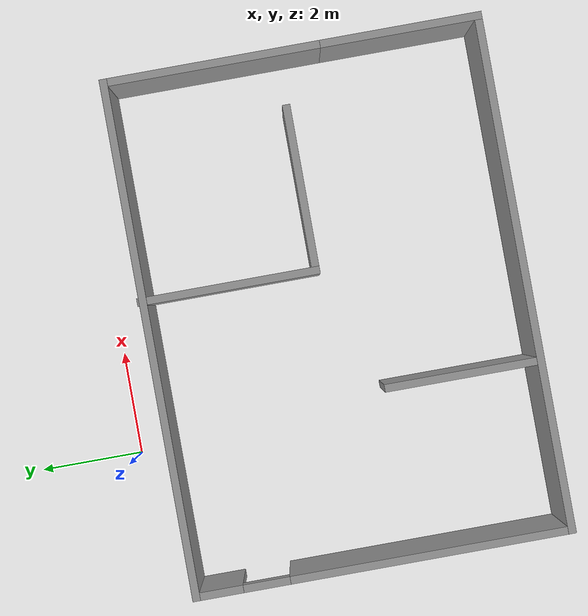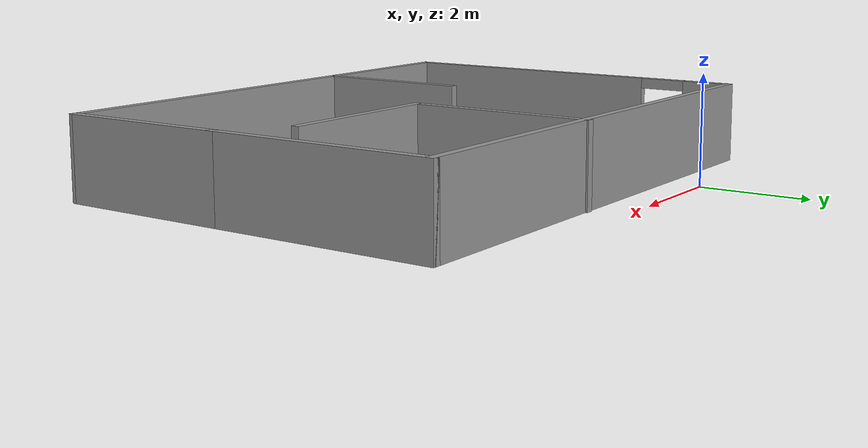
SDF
<?xml version='1.0'?>
<sdf version='1.7'>
  <model name='hbot_house'>
    <pose>2.185 -3.9926 0 0 -0 0</pose>
    <link name='Wall_0'>
      <collision name='Wall_0_Collision'>
        <geometry>
          <box>
            <size>10 0.15 1.5</size>
          </box>
        </geometry>
        <pose>0 0 0.75 0 -0 0</pose>
      </collision>
      <visual name='Wall_0_Visual'>
        <pose>0 0 0.75 0 -0 0</pose>
        <geometry>
          <box>
            <size>10 0.15 1.5</size>
          </box>
        </geometry>
        <material>
          <script>
            <uri>file://media/materials/scripts/gazebo.material</uri>
            <name>Gazebo/Grey</name>
          </script>
          <ambient>1 1 1 1</ambient>
        </material>
        <meta>
          <layer>0</layer>
        </meta>
      </visual>
      <pose>0 3.2826 0 0 -0 0</pose>
    </link>
    <link name='Wall_1'>
      <collision name='Wall_1_Collision'>
        <geometry>
          <box>
            <size>4.223 0.15 1.5</size>
          </box>
        </geometry>
        <pose>0 0 0.75 0 -0 0</pose>
      </collision>
      <visual name='Wall_1_Visual'>
        <pose>0 0 0.75 0 -0 0</pose>
        <geometry>
          <box>
            <size>4.223 0.15 1.5</size>
          </box>
        </geometry>
        <material>
          <script>
            <uri>file://media/materials/scripts/gazebo.material</uri>
            <name>Gazebo/Grey</name>
          </script>
          <ambient>1 1 1 1</ambient>
        </material>
        <meta>
          <layer>0</layer>
        </meta>
      </visual>
      <pose>4.925 1.2461 0 0 -0 -1.5708</pose>
    </link>
    <link name='Wall_2'>
      <collision name='Wall_2_Collision'>
        <geometry>
          <box>
            <size>3.25 0.15 1.5</size>
          </box>
        </geometry>
        <pose>0 0 0.75 0 -0 0</pose>
      </collision>
      <visual name='Wall_2_Visual'>
        <pose>0 0 0.75 0 -0 0</pose>
        <geometry>
          <box>
            <size>3.25 0.15 1.5</size>
          </box>
        </geometry>
        <material>
          <script>
            <uri>file://media/materials/scripts/gazebo.material</uri>
            <name>Gazebo/Grey</name>
          </script>
          <ambient>1 1 1 1</ambient>
        </material>
        <meta>
          <layer>0</layer>
        </meta>
      </visual>
      <pose>4.925 -2.3404 0 0 -0 -1.5708</pose>
    </link>
    <link name='Wall_3'>
      <collision name='Wall_3_Collision'>
        <geometry>
          <box>
            <size>10 0.15 1.5</size>
          </box>
        </geometry>
        <pose>0 0 0.75 0 -0 0</pose>
      </collision>
      <visual name='Wall_3_Visual'>
        <pose>0 0 0.75 0 -0 0</pose>
        <geometry>
          <box>
            <size>10 0.15 1.5</size>
          </box>
        </geometry>
        <material>
          <script>
            <uri>file://media/materials/scripts/gazebo.material</uri>
            <name>Gazebo/Grey</name>
          </script>
          <ambient>1 1 1 1</ambient>
        </material>
        <meta>
          <layer>0</layer>
        </meta>
      </visual>
      <pose>0 -3.9039 0 0 -0 -3.13885</pose>
    </link>
    <link name='Wall_4'>
      <pose>-4.925 -0.367398 0 0 -0 1.5708</pose>
      <visual name='Wall_4_Visual_0'>
        <pose>-0.891839 0 0.75 0 -0 0</pose>
        <geometry>
          <box>
            <size>5.46632 0.15 1.5</size>
          </box>
        </geometry>
        <material>
          <script>
            <uri>file://media/materials/scripts/gazebo.material</uri>
            <name>Gazebo/Grey</name>
          </script>
          <ambient>1 1 1 1</ambient>
        </material>
        <meta>
          <layer>0</layer>
        </meta>
      </visual>
      <collision name='Wall_4_Collision_0'>
        <geometry>
          <box>
            <size>5.46632 0.15 1.5</size>
          </box>
        </geometry>
        <pose>-0.891839 0 0.75 0 -0 0</pose>
      </collision>
      <visual name='Wall_4_Visual_1'>
        <pose>3.18316 0 0.75 0 -0 0</pose>
        <geometry>
          <box>
            <size>0.883679 0.15 1.5</size>
          </box>
        </geometry>
        <material>
          <script>
            <uri>file://media/materials/scripts/gazebo.material</uri>
            <name>Gazebo/Grey</name>
          </script>
          <ambient>1 1 1 1</ambient>
        </material>
        <meta>
          <layer>0</layer>
        </meta>
      </visual>
      <collision name='Wall_4_Collision_1'>
        <geometry>
          <box>
            <size>0.883679 0.15 1.5</size>
          </box>
        </geometry>
        <pose>3.18316 0 0.75 0 -0 0</pose>
      </collision>
      <visual name='Wall_4_Visual_2'>
        <pose>2.29132 0 1.4 0 -0 0</pose>
        <geometry>
          <box>
            <size>0.9 0.15 0.2</size>
          </box>
        </geometry>
        <material>
          <script>
            <uri>file://media/materials/scripts/gazebo.material</uri>
            <name>Gazebo/Grey</name>
          </script>
          <ambient>1 1 1 1</ambient>
        </material>
        <meta>
          <layer>0</layer>
        </meta>
      </visual>
      <collision name='Wall_4_Collision_2'>
        <geometry>
          <box>
            <size>0.9 0.15 0.2</size>
          </box>
        </geometry>
        <pose>2.29132 0 1.4 0 -0 0</pose>
      </collision>
    </link>
    <link name='Wall_6'>
      <collision name='Wall_6_Collision'>
        <geometry>
          <box>
            <size>3.5 0.15 1.5</size>
          </box>
        </geometry>
        <pose>0 0 0.75 0 -0 0</pose>
      </collision>
      <visual name='Wall_6_Visual'>
        <pose>0 0 0.75 0 -0 0</pose>
        <geometry>
          <box>
            <size>3.5 0.15 1.5</size>
          </box>
        </geometry>
        <material>
          <script>
            <uri>file://media/materials/scripts/gazebo.material</uri>
            <name>Gazebo/Grey</name>
          </script>
          <ambient>1 1 1 1</ambient>
        </material>
        <meta>
          <layer>0</layer>
        </meta>
      </visual>
      <pose>0.74 1.6406 0 0 -0 -1.5708</pose>
    </link>
    <link name='Wall_7'>
      <collision name='Wall_7_Collision'>
        <geometry>
          <box>
            <size>3.24999 0.15 1.5</size>
          </box>
        </geometry>
        <pose>0 0 0.75 0 -0 0</pose>
      </collision>
      <visual name='Wall_7_Visual'>
        <pose>0 0 0.75 0 -0 0</pose>
        <geometry>
          <box>
            <size>3.24999 0.15 1.5</size>
          </box>
        </geometry>
        <material>
          <script>
            <uri>file://media/materials/scripts/gazebo.material</uri>
            <name>Gazebo/Grey</name>
          </script>
          <ambient>1 1 1 1</ambient>
        </material>
        <meta>
          <layer>0</layer>
        </meta>
      </visual>
      <pose>2.29 -0.034397 0 0 -0 0</pose>
    </link>
    <link name='Wall_9'>
      <collision name='Wall_9_Collision'>
        <geometry>
          <box>
            <size>3 0.15 1.5</size>
          </box>
        </geometry>
        <pose>0 0 0.75 0 -0 0</pose>
      </collision>
      <visual name='Wall_9_Visual'>
        <pose>0 0 0.75 0 -0 0</pose>
        <geometry>
          <box>
            <size>3 0.15 1.5</size>
          </box>
        </geometry>
        <material>
          <script>
            <uri>file://media/materials/scripts/gazebo.material</uri>
            <name>Gazebo/Grey</name>
          </script>
          <ambient>1 1 1 1</ambient>
        </material>
        <meta>
          <layer>0</layer>
        </meta>
      </visual>
      <pose>-1.681 -2.4154 0 0 -0 1.5708</pose>
    </link>
    <static>1</static>
  </model>
</sdf>
